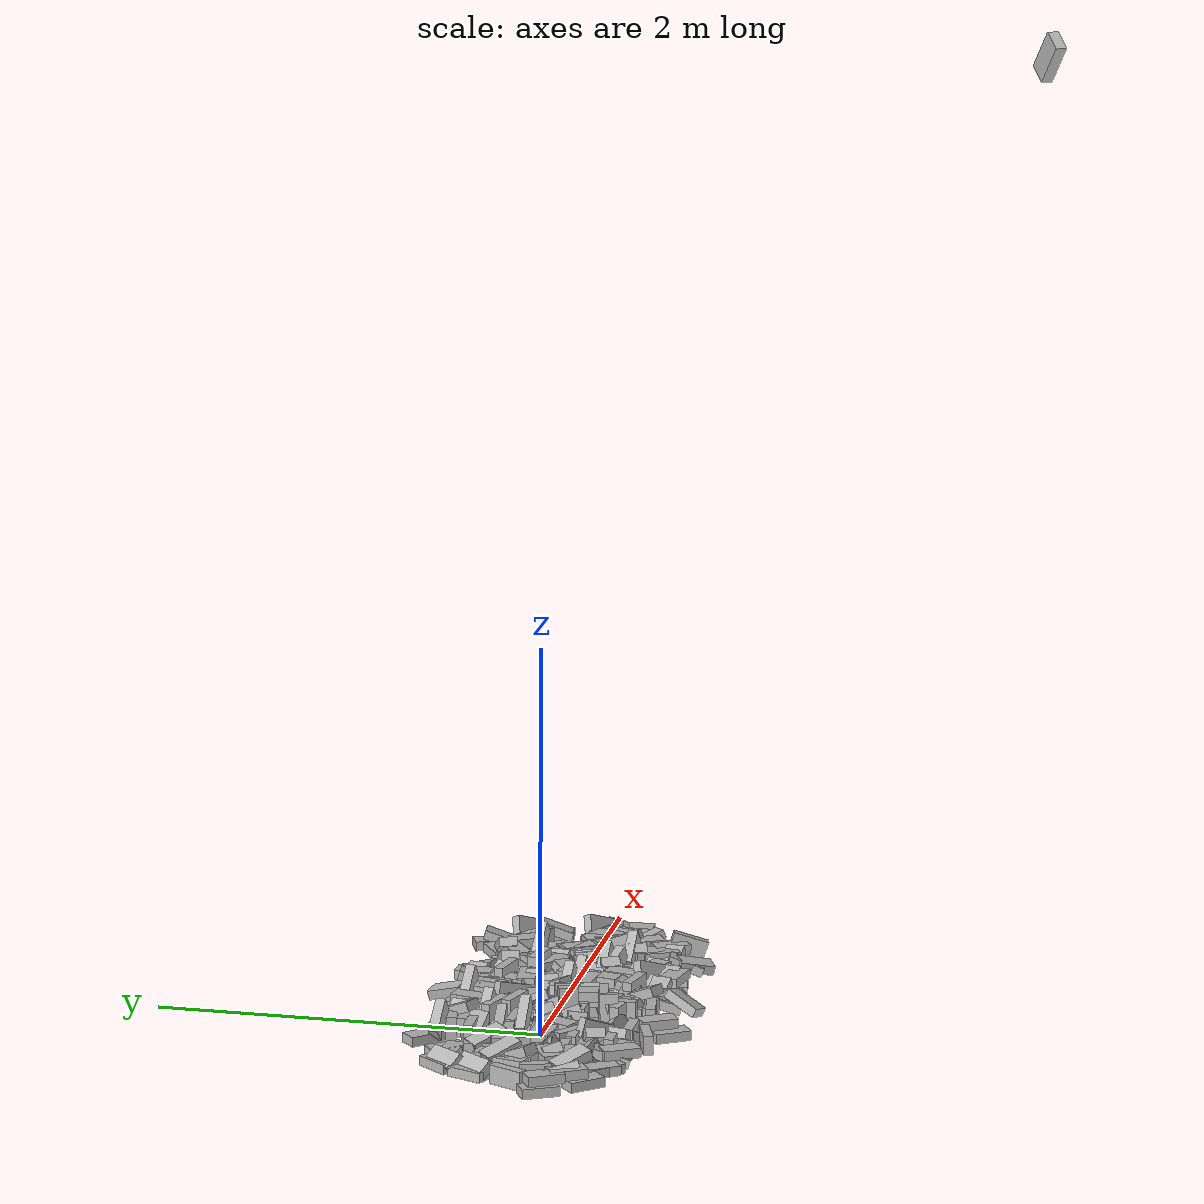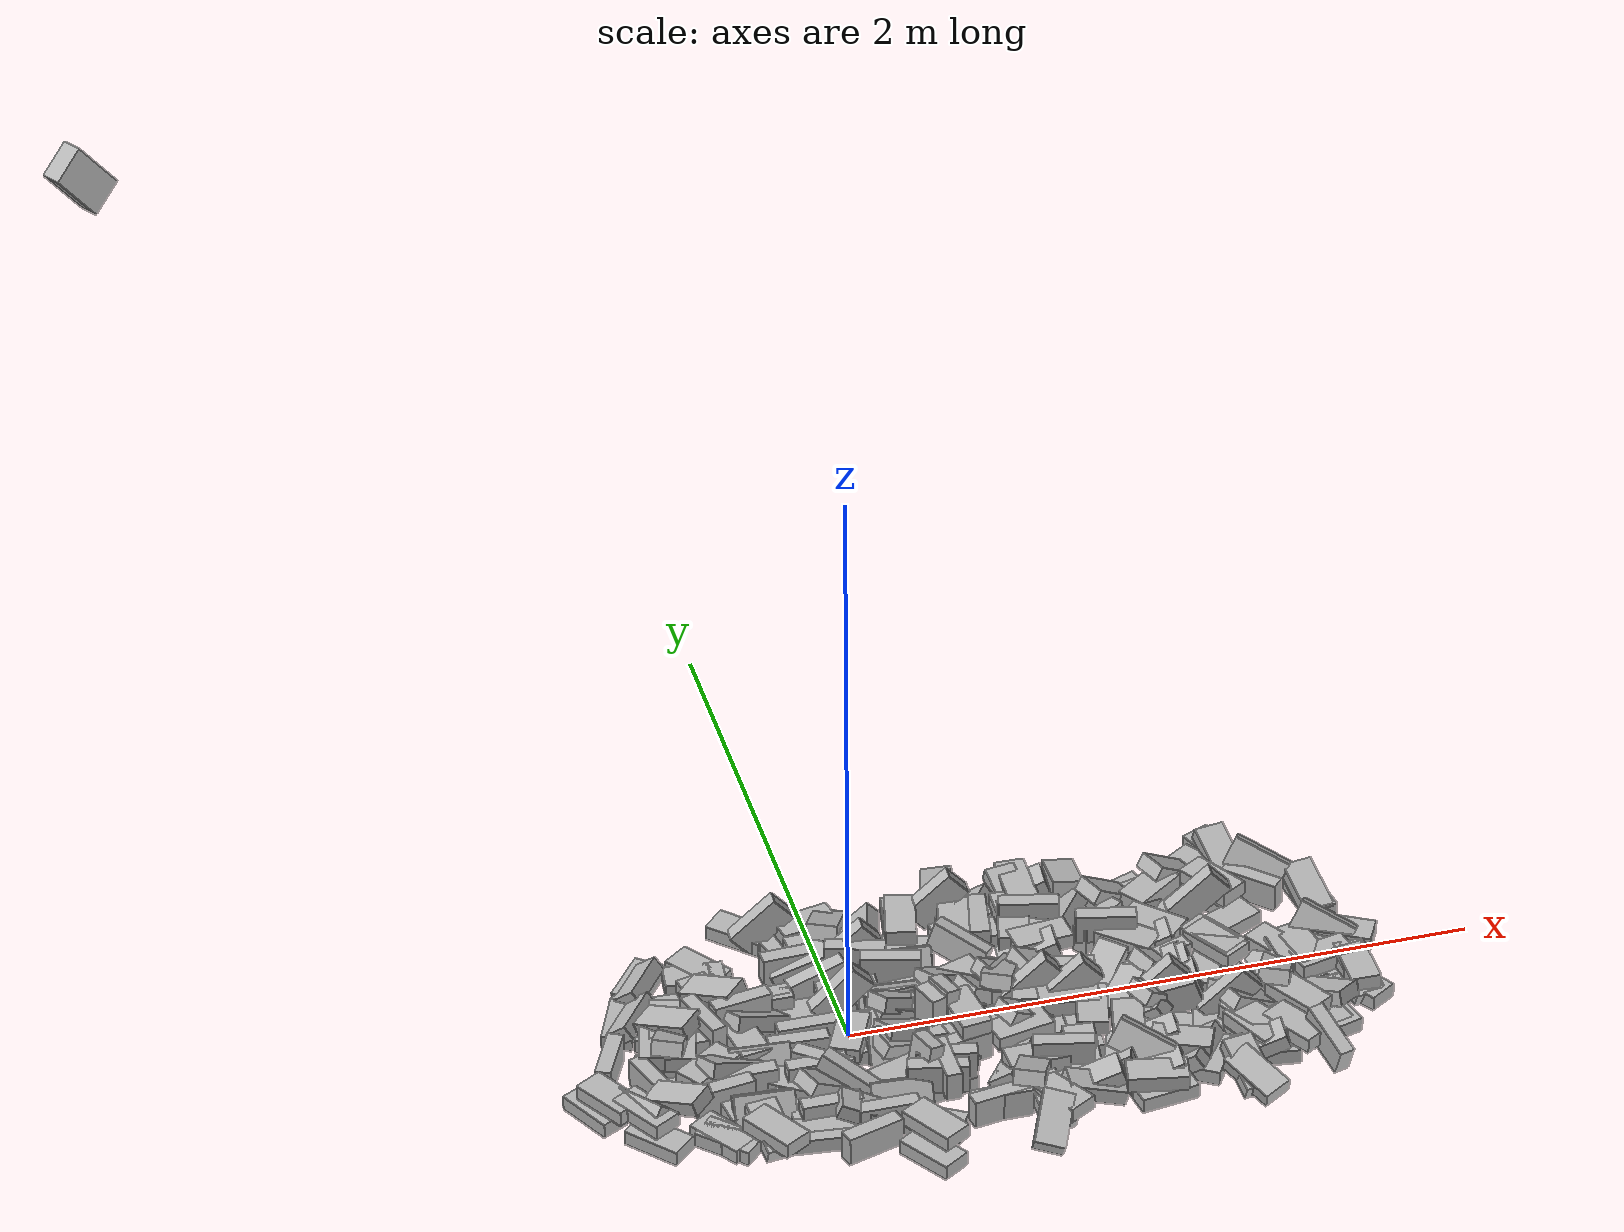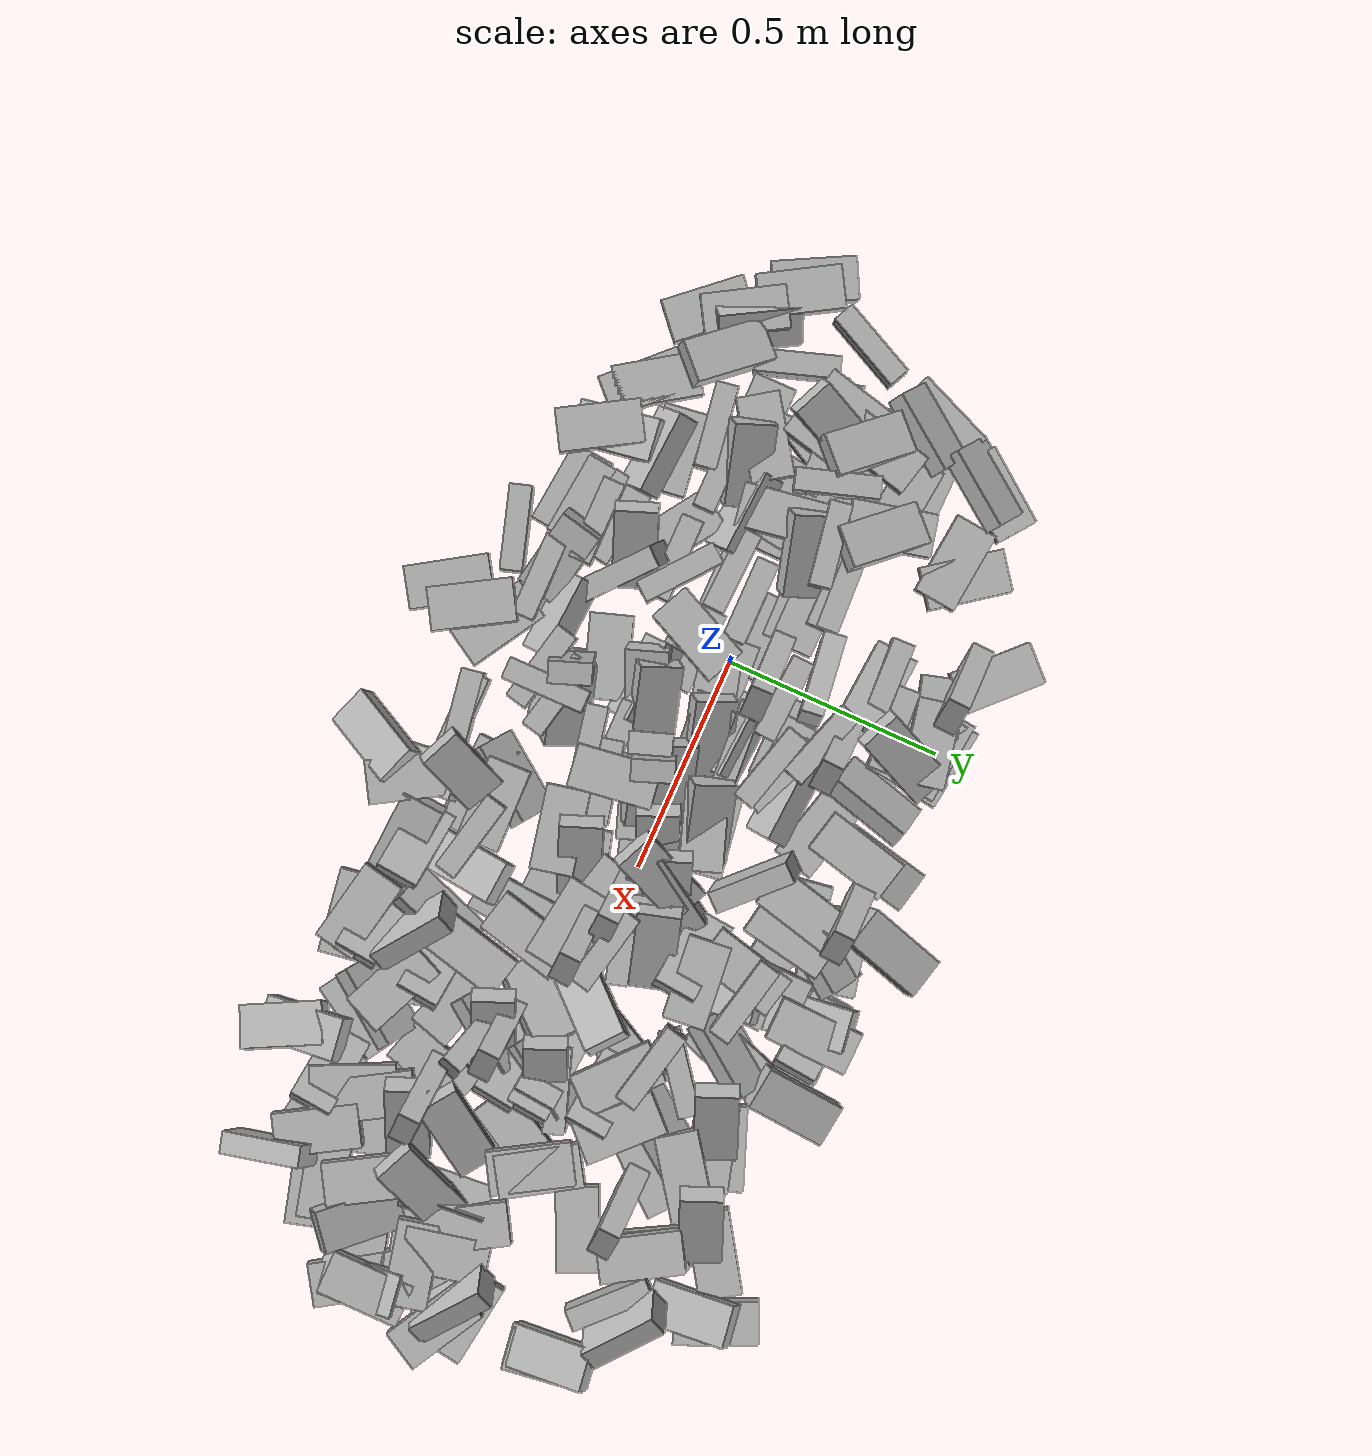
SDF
<?xml version="1.0" ?>
<sdf version="1.5">
  <model name="dbrick_stack">

    <include>
      <name>d1</name>
      <pose frame=''>-0.140407 -0.015073 0.04849 0.000197 -1.3e-05 0.000845</pose>
      <uri>model://dbrick</uri>
    </include>
    <include>
      <name>d2</name>
      <pose frame=''>-0.159002 -0.204749 0.04849 0.000197 -1.3e-05 0.000845</pose>
      <uri>model://dbrick</uri>
    </include>
    <include>
      <name>d3</name>
      <pose frame=''>0.264282 -0.15928 0.04849 0.000197 -1.3e-05 0.000845</pose>
      <uri>model://dbrick</uri>
    </include>
    <include>
      <name>d4</name>
      <pose frame=''>0 -0.459723 0.04849 0.000197 -1.3e-05 0.000845</pose>
      <uri>model://dbrick</uri>
    </include>
    <include>
      <name>d5</name>
      <pose frame=''>-0.501 0 0.04849 0.000197 -1.3e-05 0.000845</pose>
      <uri>model://dbrick</uri>
    </include>
    <include>
      <name>d6</name>
      <pose frame=''>-0.2409 0.141432 0.04849 0.000197 -1.3e-05 0.000845</pose>
      <uri>model://dbrick</uri>
    </include>
    <include>
      <name>d7</name>
      <pose frame=''>-0.37768 -0.19275 0.04849 0.000197 -1.3e-05 0.000845</pose>
      <uri>model://dbrick</uri>
    </include>
    <include>
      <name>d8</name>
      <pose frame=''>-0.39794 0.02585 0.04849 0.000197 -1.3e-05 0.000845</pose>
      <uri>model://dbrick</uri>
    </include>
    <include>
      <name>d9</name>
      <pose frame=''>0.348471 -0.494103 0.04849 0.000197 -1.3e-05 0.000845</pose>
      <uri>model://dbrick</uri>
    </include>
    <include>
      <name>d10</name>
      <pose frame=''>-0.1629 -0.39564 0.04849 0.000197 -1.3e-05 0.000845</pose>
      <uri>model://dbrick</uri>
    </include>
    <include>
      <name>d11</name>
      <pose frame=''>-0.078767 0.037639 0 0 -0 0</pose>
      <uri>model://dbrick</uri>
    </include>
    <include>
      <name>d12</name>
      <pose frame=''>-0.186008 -0.09158 0 0 -0 0</pose>
      <uri>model://dbrick</uri>
    </include>
    <include>
      <name>d13</name>
      <pose frame=''>-0.347579 -0.037796 0.024998 -1.5708 -2e-05 -0.003486</pose>
      <uri>model://dbrick</uri>
    </include>
    <include>
      <name>d14</name>
      <pose frame=''>-0.175951 0.107717 0.024998 -1.5708 -2e-05 -0.003486</pose>
      <uri>model://dbrick</uri>
    </include>
    <include>
      <name>d15</name>
      <pose frame=''>0.111732 0.184495 0.024998 -1.5708 -2e-05 -0.003486</pose>
      <uri>model://dbrick</uri>
    </include>
    <include>
      <name>d16</name>
      <pose frame=''>-0.455829 -0.13263 0.024998 -1.5708 -2e-05 -0.003486</pose>
      <uri>model://dbrick</uri>
    </include>
    <include>
      <name>d17</name>
      <pose frame=''>0.142531 0.079505 0.054224 -0.581093 -4e-06 -0.062141</pose>
      <uri>model://dbrick</uri>
    </include>
    <include>
      <name>d18</name>
      <pose frame=''>0.227001 0.233589 0.054224 -0.581093 -4e-06 -0.062141</pose>
      <uri>model://dbrick</uri>
    </include>
    <include>
      <name>d19</name>
      <pose frame=''>0.114864 -0.155943 0.054224 -0.581093 -4e-06 -0.062141</pose>
      <uri>model://dbrick</uri>
    </include>
    <include>
      <name>d20</name>
      <pose frame=''>-0.314268 -0.109297 0.054224 -0.581093 -4e-06 -0.062141</pose>
      <uri>model://dbrick</uri>
    </include>
    <include>
      <name>d21</name>
      <pose frame=''>-0.357726 -0.334883 0.054224 -0.581093 -4e-06 -0.062141</pose>
      <uri>model://dbrick</uri>
    </include>
    <include>
      <name>d22</name>
      <pose frame=''>0.060434 -0.383261 0.054224 -0.581093 -4e-06 -0.062141</pose>
      <uri>model://dbrick</uri>
    </include>
    <include>
      <name>d23</name>
      <pose frame=''>0.296744 -0.015419 0.080433 1.25558 0.376008 0.279887</pose>
      <uri>model://dbrick</uri>
    </include>
    <include>
      <name>d24</name>
      <pose frame=''>0.15144 -0.117381 0.080433 1.25558 0.376008 0.279887</pose>
      <uri>model://dbrick</uri>
    </include>
    <include>
      <name>d25</name>
      <pose frame=''>0.226254 -0.291248 0.080433 1.25558 0.376008 0.279887</pose>
      <uri>model://dbrick</uri>
    </include>
    <include>
      <name>d26</name>
      <pose frame=''>0.171229 0.023884 0.080433 1.25558 0.376008 0.279887</pose>
      <uri>model://dbrick</uri>
    </include>
    <include>
      <name>d27</name>
      <pose frame=''>0.315794 -0.058024 0.080433 1.25558 0.376008 0.279887</pose>
      <uri>model://dbrick</uri>
    </include>
    <include>
      <name>d28</name>
      <pose frame=''>0.339518 0.095438 0.080433 1.25558 0.376008 0.279887</pose>
      <uri>model://dbrick</uri>
    </include>
    <include>
      <name>d29</name>
      <pose frame=''>-0.286465 0.053815 0.080433 1.25558 0.376008 0.279887</pose>
      <uri>model://dbrick</uri>
    </include>
    <include>
      <name>d30</name>
      <pose frame=''>-0.416178 -0.145607 0.080433 1.25558 0.376008 0.279887</pose>
      <uri>model://dbrick</uri>
    </include>
    <include>
      <name>d31</name>
      <pose frame=''>0.18221 0.204324 0.04849 -2e-06 -0 -0.397847</pose>
      <uri>model://dbrick</uri>
    </include>
    <include>
      <name>d32</name>
      <pose frame=''>0.271674 -0.064169 0.097976 -1.5708 1.38604 -2.78475</pose>
      <uri>model://dbrick</uri>
    </include>
    <include>
      <name>d33</name>
      <pose frame=''>0.151166 -0.314888 0.097976 -1.5708 1.38604 -2.78475</pose>
      <uri>model://dbrick</uri>
    </include>
    <include>
      <name>d34</name>
      <pose frame=''>-0.384418 0.18962 0.1074 -1.47754 -0.315178 -0.823493</pose>
      <uri>model://dbrick</uri>
    </include>
    <include>
      <name>d35</name>
      <pose frame=''>-0.554457 0.078955 0.1074 -1.47754 -0.315178 -0.823493</pose>
      <uri>model://dbrick</uri>
    </include>
    <include>
      <name>d36</name>
      <pose frame=''>-0.614704 -0.284804 0.1074 -1.47754 -0.315178 -0.823493</pose>
      <uri>model://dbrick</uri>
    </include>
    <include>
      <name>d37</name>
      <pose frame=''>-0.149306 -0.297684 0.070548 1.57083 0.543761 0.363115</pose>
      <uri>model://dbrick</uri>
    </include>
    <include>
      <name>d38</name>
      <pose frame=''>0.528574 -0.127156 0.070548 1.57083 0.543761 0.363115</pose>
      <uri>model://dbrick</uri>
    </include>
    <include>
      <name>d39</name>
      <pose frame=''>0.517736 0.081658 0.070548 1.57083 0.543761 0.363115</pose>
      <uri>model://dbrick</uri>
    </include>
    <include>
      <name>d40</name>
      <pose frame=''>0.568006 0 0.075 -1.5708 -1e-06 -1.81364</pose>
      <uri>model://dbrick</uri>
    </include>
    <include>
      <name>d41</name>
      <pose frame=''>0.27761 0.426539 0.074994 -1.57076 1.9e-05 -1.80619</pose>
      <uri>model://dbrick</uri>
    </include>
    <include>
      <name>d42</name>
      <pose frame=''>0.434794 0.370416 0.075004 -1.57068 2.7e-05 -1.80586</pose>
      <uri>model://dbrick</uri>
    </include>
    <include>
      <name>d43</name>
      <pose frame=''>0.610433 0.304788 0.075 -1.57079 1.1e-05 -1.80574</pose>
      <uri>model://dbrick</uri>
    </include>
    <include>
      <name>d44</name>
      <pose frame=''>0.731074 -0.160918 0.074998 -1.57084 1e-05 -1.80522</pose>
      <uri>model://dbrick</uri>
    </include>
    <include>
      <name>d45</name>
      <pose frame=''>0.818524 -0.260604 0.074999 -1.57079 -4e-05 -1.8051</pose>
      <uri>model://dbrick</uri>
    </include>
    <include>
      <name>d46</name>
      <pose frame=''>-0.537357 0 0.074999 -1.57083 0 -1.80383</pose>
      <uri>model://dbrick</uri>
    </include>
    <include>
      <name>d47</name>
      <pose frame=''>-0.610588 0.026403 0.075003 -1.5708 -4.7e-05 -1.80356</pose>
      <uri>model://dbrick</uri>
    </include>
    <include>
      <name>d48</name>
      <pose frame=''>-0.488657 -0.424528 0.025 -1.5708 0 -0.784797</pose>
      <uri>model://dbrick</uri>
    </include>
    <include>
      <name>d49</name>
      <pose frame=''>-0.402998 0.364882 0.025 -1.57078 -8e-06 -0.102342</pose>
      <uri>model://dbrick</uri>
    </include>
    <include>
      <name>d50</name>
      <pose frame=''>-0.482431 0.202994 0.025 -1.57078 -8e-06 -0.102342</pose>
      <uri>model://dbrick</uri>
    </include>
    <include>
      <name>d51</name>
      <pose frame=''>-0.192592 -0.433296 0.025 -1.57078 -8e-06 -0.102342</pose>
      <uri>model://dbrick</uri>
    </include>
    <include>
      <name>d52</name>
      <pose frame=''>0 0.493994 0.025 -1.57078 -8e-06 -0.102342</pose>
      <uri>model://dbrick</uri>
    </include>
    <include>
      <name>d53</name>
      <pose frame=''>0 0.424208 0.025 -1.57078 -8e-06 -0.102342</pose>
      <uri>model://dbrick</uri>
    </include>
    <include>
      <name>d54</name>
      <pose frame=''>0.479081 0.35788 0.025 -1.57078 -8e-06 -0.102342</pose>
      <uri>model://dbrick</uri>
    </include>
    <include>
      <name>d55</name>
      <pose frame=''>0.494289 -0.388641 0.025 -1.57078 -8e-06 -0.102342</pose>
      <uri>model://dbrick</uri>
    </include>
    <include>
      <name>d56</name>
      <pose frame=''>-0.58793 0.354508 0.049822 -2.24338 0.000538 0.942008</pose>
      <uri>model://dbrick</uri>
    </include>
    <include>
      <name>d57</name>
      <pose frame=''>-0.651142 0.192817 0.049822 -2.24338 0.000538 0.942008</pose>
      <uri>model://dbrick</uri>
    </include>
    <include>
      <name>d58</name>
      <pose frame=''>1 0 0.049822 -2.24338 0.000538 0.942008</pose>
      <uri>model://dbrick</uri>
    </include>
    <include>
      <name>d59</name>
      <pose frame=''>0.790712 0.350859 0.049822 -2.24338 0.000538 0.942008</pose>
      <uri>model://dbrick</uri>
    </include>
    <include>
      <name>d60</name>
      <pose frame=''>1 0 0.049822 -2.24338 0.000538 0.942008</pose>
      <uri>model://dbrick</uri>
    </include>
    <include>
      <name>d61</name>
      <pose frame=''>1.00188 0.279942 0.049822 -2.24338 0.000538 0.942008</pose>
      <uri>model://dbrick</uri>
    </include>
    <include>
      <name>d62</name>
      <pose frame=''>0.43375 -0.336843 0.049822 -2.24338 0.000538 0.942008</pose>
      <uri>model://dbrick</uri>
    </include>
    <include>
      <name>d63</name>
      <pose frame=''>0.953716 -0.147439 0.049822 -2.24338 0.000538 0.942008</pose>
      <uri>model://dbrick</uri>
    </include>
    <include>
      <name>d64</name>
      <pose frame=''>1 -0.405395 0.049822 -2.24338 0.000538 0.942008</pose>
      <uri>model://dbrick</uri>
    </include>
    <include>
      <name>d65</name>
      <pose frame=''>0.50089 0.440265 0.049822 -2.24338 0.000538 0.942008</pose>
      <uri>model://dbrick</uri>
    </include>
    <include>
      <name>d66</name>
      <pose frame=''>0.667152 0.330834 0.098492 -1.2e-05 9e-06 -0.219058</pose>
      <uri>model://dbrick</uri>
    </include>
    <include>
      <name>d67</name>
      <pose frame=''>0.881922 0.20348 0.098492 -1.2e-05 9e-06 -0.219058</pose>
      <uri>model://dbrick</uri>
    </include>
    <include>
      <name>d68</name>
      <pose frame=''>0.687261 0.005526 0.098492 -1.2e-05 9e-06 -0.219058</pose>
      <uri>model://dbrick</uri>
    </include>
    <include>
      <name>d69</name>
      <pose frame=''>0.179713 -0.373484 0.098492 -1.2e-05 9e-06 -0.219058</pose>
      <uri>model://dbrick</uri>
    </include>
    <include>
      <name>d70</name>
      <pose frame=''>0.221679 -0.316146 0.098492 -1.2e-05 9e-06 -0.219058</pose>
      <uri>model://dbrick</uri>
    </include>
    <include>
      <name>d71</name>
      <pose frame=''>0.581176 -0.362588 0.098492 -1.2e-05 9e-06 -0.219058</pose>
      <uri>model://dbrick</uri>
    </include>
    <include>
      <name>d72</name>
      <pose frame=''>-0.076411 0.319029 0.056619 -1.5708 -0.356957 -0.09265</pose>
      <uri>model://dbrick</uri>
    </include>
    <include>
      <name>d73</name>
      <pose frame=''>0.970231 0.004914 0.056619 -1.5708 -0.356957 -0.09265</pose>
      <uri>model://dbrick</uri>
    </include>
    <include>
      <name>d74</name>
      <pose frame=''>1 0 0.056619 -1.5708 -0.356957 -0.09265</pose>
      <uri>model://dbrick</uri>
    </include>
    <include>
      <name>d75</name>
      <pose frame=''>0.839276 -0.483585 0.056619 -1.5708 -0.356957 -0.09265</pose>
      <uri>model://dbrick</uri>
    </include>
    <include>
      <name>d76</name>
      <pose frame=''>0.867278 -0.322243 0.056619 -1.5708 -0.356957 -0.09265</pose>
      <uri>model://dbrick</uri>
    </include>
    <include>
      <name>d77</name>
      <pose frame=''>0.645605 -0.470402 0.056619 -1.5708 -0.356957 -0.09265</pose>
      <uri>model://dbrick</uri>
    </include>
    <include>
      <name>d78</name>
      <pose frame=''>0.627216 0.18901 0.056619 -1.5708 -0.356957 -0.09265</pose>
      <uri>model://dbrick</uri>
    </include>
    <include>
      <name>d79</name>
      <pose frame=''>0.981379 0.132772 0.056619 -1.5708 -0.356957 -0.09265</pose>
      <uri>model://dbrick</uri>
    </include>
    <include>
      <name>d80</name>
      <pose frame=''>0.679754 0.502002 0.056619 -1.5708 -0.356957 -0.09265</pose>
      <uri>model://dbrick</uri>
    </include>
    <include>
      <name>d81</name>
      <pose frame=''>1 0 0.056619 -1.5708 -0.356957 -0.09265</pose>
      <uri>model://dbrick</uri>
    </include>
    <include>
      <name>d82</name>
      <pose frame=''>1.17925 -0.438559 0.056619 -1.5708 -0.356957 -0.09265</pose>
      <uri>model://dbrick</uri>
    </include>
    <include>
      <name>d83</name>
      <pose frame=''>0.952286 -0.146078 0.072452 1.57089 0.572042 0.391576</pose>
      <uri>model://dbrick</uri>
    </include>
    <include>
      <name>d84</name>
      <pose frame=''>1 0 0.072452 1.57089 0.572042 0.391576</pose>
      <uri>model://dbrick</uri>
    </include>
    <include>
      <name>d85</name>
      <pose frame=''>0.435539 0.017507 0.072452 1.57089 0.572042 0.391576</pose>
      <uri>model://dbrick</uri>
    </include>
    <include>
      <name>d86</name>
      <pose frame=''>0.942236 0.385775 0.072452 1.57089 0.572042 0.391576</pose>
      <uri>model://dbrick</uri>
    </include>
    <include>
      <name>d87</name>
      <pose frame=''>1.16278 0.447637 0.072452 1.57089 0.572042 0.391576</pose>
      <uri>model://dbrick</uri>
    </include>
    <include>
      <name>d88</name>
      <pose frame=''>1.20757 -0.238502 0.072452 1.57089 0.572042 0.391576</pose>
      <uri>model://dbrick</uri>
    </include>
    <include>
      <name>d89</name>
      <pose frame=''>0.581231 -0.013189 0.099675 3.13965 0.733785 3.09129</pose>
      <uri>model://dbrick</uri>
    </include>
    <include>
      <name>d90</name>
      <pose frame=''>0.404892 0.46886 0.099675 3.13965 0.733785 3.09129</pose>
      <uri>model://dbrick</uri>
    </include>
    <include>
      <name>d91</name>
      <pose frame=''>0.077038 0.295823 0.099675 3.13965 0.733785 3.09129</pose>
      <uri>model://dbrick</uri>
    </include>
    <include>
      <name>d92</name>
      <pose frame=''>-0.154358 0.490646 0.099675 3.13965 0.733785 3.09129</pose>
      <uri>model://dbrick</uri>
    </include>
    <include>
      <name>d93</name>
      <pose frame=''>0.953534 -0.129576 0.099675 3.13965 0.733785 3.09129</pose>
      <uri>model://dbrick</uri>
    </include>
    <include>
      <name>d94</name>
      <pose frame=''>1.20068 0.267465 0.099675 3.13965 0.733785 3.09129</pose>
      <uri>model://dbrick</uri>
    </include>
    <include>
      <name>d95</name>
      <pose frame=''>1.15148 -0.230027 0.099675 3.13965 0.733785 3.09129</pose>
      <uri>model://dbrick</uri>
    </include>
    <include>
      <name>d96</name>
      <pose frame=''>0.690469 -0.05407 0.099675 3.13965 0.733785 3.09129</pose>
      <uri>model://dbrick</uri>
    </include>
    <include>
      <name>d97</name>
      <pose frame=''>1.19558 0.052946 0.074998 1.57085 0.000157 -1.03299</pose>
      <uri>model://dbrick</uri>
    </include>
    <include>
      <name>d98</name>
      <pose frame=''>1.19427 -0.330485 0.074998 1.57085 0.000157 -1.03299</pose>
      <uri>model://dbrick</uri>
    </include>
    <include>
      <name>d99</name>
      <pose frame=''>0.52026 -0.540503 0.074998 1.57085 0.000157 -1.03299</pose>
      <uri>model://dbrick</uri>
    </include>
    <include>
      <name>d100</name>
      <pose frame=''>0.116927 -0.571585 0.074998 1.57085 0.000157 -1.03299</pose>
      <uri>model://dbrick</uri>
    </include>
    <include>
      <name>d101</name>
      <pose frame=''>-0.356684 -0.475145 0.074998 1.57085 0.000157 -1.03299</pose>
      <uri>model://dbrick</uri>
    </include>
    <include>
      <name>d102</name>
      <pose frame=''>-0.716187 -0.285831 0.074998 1.57085 0.000157 -1.03299</pose>
      <uri>model://dbrick</uri>
    </include>
    <include>
      <name>d103</name>
      <pose frame=''>-0.806178 -0.192421 0.074998 1.57085 0.000157 -1.03299</pose>
      <uri>model://dbrick</uri>
    </include>
    <include>
      <name>d104</name>
      <pose frame=''>1.2737 0.352261 0.074998 1.57085 0.000157 -1.03299</pose>
      <uri>model://dbrick</uri>
    </include>
    <include>
      <name>d105</name>
      <pose frame=''>1.3727 -0.023614 0.074998 1.57085 0.000157 -1.03299</pose>
      <uri>model://dbrick</uri>
    </include>
    <include>
      <name>d106</name>
      <pose frame=''>1.36508 -0.266131 0.074998 1.57085 0.000157 -1.03299</pose>
      <uri>model://dbrick</uri>
    </include>
    <include>
      <name>d107</name>
      <pose frame=''>1.31092 -0.409835 0.074998 1.57085 0.000157 -1.03299</pose>
      <uri>model://dbrick</uri>
    </include>
    <include>
      <name>d108</name>
      <pose frame=''>0.824242 -0.394745 0.097201 -0.459369 0.338975 -0.627792</pose>
      <uri>model://dbrick</uri>
    </include>
    <include>
      <name>d109</name>
      <pose frame=''>1.43273 0.38379 0.097201 -0.459369 0.338975 -0.627792</pose>
      <uri>model://dbrick</uri>
    </include>
    <include>
      <name>d110</name>
      <pose frame=''>1.5351 0.016135 0.097201 -0.459369 0.338975 -0.627792</pose>
      <uri>model://dbrick</uri>
    </include>
    <include>
      <name>d111</name>
      <pose frame=''>0.553648 -0.106489 0.024998 1.57084 -1e-06 0.27518</pose>
      <uri>model://dbrick</uri>
    </include>
    <include>
      <name>d112</name>
      <pose frame=''>0.884059 -0.355356 0.024998 1.57084 -1e-06 0.27518</pose>
      <uri>model://dbrick</uri>
    </include>
    <include>
      <name>d113</name>
      <pose frame=''>1.42551 -0.126223 0.024998 1.57084 -1e-06 0.27518</pose>
      <uri>model://dbrick</uri>
    </include>
    <include>
      <name>d114</name>
      <pose frame=''>1.42751 -0.374193 0.024998 1.57084 -1e-06 0.27518</pose>
      <uri>model://dbrick</uri>
    </include>
    <include>
      <name>d115</name>
      <pose frame=''>0.105795 0.003784 0.024998 1.57084 -1e-06 0.27518</pose>
      <uri>model://dbrick</uri>
    </include>
    <include>
      <name>d116</name>
      <pose frame=''>0.506639 0 0.024998 1.57084 -1e-06 0.27518</pose>
      <uri>model://dbrick</uri>
    </include>
    <include>
      <name>d117</name>
      <pose frame=''>1 0.401054 0.024998 1.57084 -1e-06 0.27518</pose>
      <uri>model://dbrick</uri>
    </include>
    <include>
      <name>d118</name>
      <pose frame=''>0.493977 0.442686 0.024998 1.57084 -1e-06 0.27518</pose>
      <uri>model://dbrick</uri>
    </include>
    <include>
      <name>d119</name>
      <pose frame=''>-0.070541 0.470524 0.024998 1.57084 -1e-06 0.27518</pose>
      <uri>model://dbrick</uri>
    </include>
    <include>
      <name>d120</name>
      <pose frame=''>-0.572985 0 0.024998 1.57084 -1e-06 0.27518</pose>
      <uri>model://dbrick</uri>
    </include>
    <include>
      <name>d121</name>
      <pose frame=''>1.53413 -0.206467 0.024998 1.57084 -1e-06 0.27518</pose>
      <uri>model://dbrick</uri>
    </include>
    <include>
      <name>d122</name>
      <pose frame=''>1.49406 -0.097895 0.075005 1.5707 -0.000137 0.228206</pose>
      <uri>model://dbrick</uri>
    </include>
    <include>
      <name>d123</name>
      <pose frame=''>1.12107 -0.528648 0.055294 1.57081 0.340536 -1.42516</pose>
      <uri>model://dbrick</uri>
    </include>
    <include>
      <name>d124</name>
      <pose frame=''>0.649711 0.484067 0.055294 1.57081 0.340536 -1.42516</pose>
      <uri>model://dbrick</uri>
    </include>
    <include>
      <name>d125</name>
      <pose frame=''>0.672618 0.273957 0.055294 1.57081 0.340536 -1.42516</pose>
      <uri>model://dbrick</uri>
    </include>
    <include>
      <name>d126</name>
      <pose frame=''>1.58349 -0.183792 0.055294 1.57081 0.340536 -1.42516</pose>
      <uri>model://dbrick</uri>
    </include>
    <include>
      <name>d127</name>
      <pose frame=''>1.56103 0.261864 0.055294 1.57081 0.340536 -1.42516</pose>
      <uri>model://dbrick</uri>
    </include>
    <include>
      <name>d128</name>
      <pose frame=''>1.34614 0.508902 0.055294 1.57081 0.340536 -1.42516</pose>
      <uri>model://dbrick</uri>
    </include>
    <include>
      <name>d129</name>
      <pose frame=''>1.32847 -0.151015 0.100581 -1.59577 -0.404556 -1.97374</pose>
      <uri>model://dbrick</uri>
    </include>
    <include>
      <name>d130</name>
      <pose frame=''>0.494256 0.050481 0.100581 -1.59577 -0.404556 -1.97374</pose>
      <uri>model://dbrick</uri>
    </include>
    <include>
      <name>d131</name>
      <pose frame=''>0.037387 0.431075 0.100581 -1.59577 -0.404556 -1.97374</pose>
      <uri>model://dbrick</uri>
    </include>
    <include>
      <name>d132</name>
      <pose frame=''>-0.56474 0 0.100581 -1.59577 -0.404556 -1.97374</pose>
      <uri>model://dbrick</uri>
    </include>
    <include>
      <name>d133</name>
      <pose frame=''>0.463431 -0.428796 0.100581 -1.59577 -0.404556 -1.97374</pose>
      <uri>model://dbrick</uri>
    </include>
    <include>
      <name>d134</name>
        <pose frame=''>-0.003689 0.086742 0.100943 3.14132 0.769792 -3.13146</pose>
      <uri>model://dbrick</uri>
    </include>
    <include>
      <name>d135</name>
        <pose frame=''>0.659237 0.033021 0.0485 -3.14159 -0 -2.85651</pose>
      <uri>model://dbrick</uri>
    </include>
    <include>
      <name>d136</name>
        <pose frame=''>0.439335 0.585756 0.056676 -1.42102 -0.276488 -1.85854</pose>
      <uri>model://dbrick</uri>
    </include>
    <include>
      <name>d137</name>
        <pose frame=''>0.085953 0.255782 0.098511 -3.14121 0.000496 2.82558</pose>
      <uri>model://dbrick</uri>
    </include>
    <include>
      <name>d138</name>
        <pose frame=''>-0.208238 0.552925 0.025 1.5708 -0 2.36808</pose>
      <uri>model://dbrick</uri>
    </include>
    <include>
      <name>d139</name>
        <pose frame=''>0.981514 -0.174781 0.078204 -3.14149 0.350943 2.84975</pose>
      <uri>model://dbrick</uri>
    </include>
    <include>
      <name>d140</name>
        <pose frame=''>1.28257 0.203122 0.024881 -1.5708 3e-06 -2.70724</pose>
      <uri>model://dbrick</uri>
    </include>
    <include>
      <name>d141</name>
        <pose frame=''>1.18748 -0.130406 0.060424 -1.57078 -0.405212 -2.18275</pose>
      <uri>model://dbrick</uri>
    </include>
    <include>
      <name>d142</name>
        <pose frame=''>0.674475 -0.091739 0.075133 -1.5708 0.001375 3.00619</pose>
      <uri>model://dbrick</uri>
    </include>
    <include>
      <name>d143</name>
        <pose frame=''>-0.184451 -0.079483 0.048481 1.1e-05 -0 -0.043888</pose>
      <uri>model://dbrick</uri>
    </include>
    <include>
      <name>d144</name>
        <pose frame=''>-0.133609 -0.183068 0.0485 1.1e-05 -0 -0.672185</pose>
      <uri>model://dbrick</uri>
    </include>
    <include>
      <name>d145</name>
        <pose frame=''>-0.087778 -0.29454 0.081286 -0.049423 0.378819 -0.722818</pose>
      <uri>model://dbrick</uri>
    </include>
    <include>
      <name>d146</name>
        <pose frame=''>0.833594 -0.521409 0.074998 1.57083 -8e-06 -0.192502</pose>
      <uri>model://dbrick</uri>
    </include>
    <include>
      <name>d147</name>
        <pose frame=''>1.39824 0.332099 0.0485 -0 -0 -0.769168</pose>
      <uri>model://dbrick</uri>
    </include>
    <include>
      <name>d148</name>
        <pose frame=''>1.55969 0.049213 0.025 -1.5708 3e-06 -0.138379</pose>
      <uri>model://dbrick</uri>
    </include>
    <include>
      <name>d149</name>
        <pose frame=''>-0.046764 0.197802 0.072143 -0.000118 -0.27085 0.119844</pose>
      <uri>model://dbrick</uri>
    </include>
    <include>
      <name>d150</name>
        <pose frame=''>0.004749 -0.102029 0.024998 -1.57084 -3e-06 -0.044556</pose>
      <uri>model://dbrick</uri>
    </include>
    <include>
      <name>d151</name>
        <pose frame=''>-0.372297 -0.036682 0.025 -1.5708 3e-06 -0.125776</pose>
      <uri>model://dbrick</uri>
    </include>
    <include>
      <name>d152</name>
        <pose frame=''>-0.181742 0.085627 0.024822 -1.57076 -0 0.018671</pose>
      <uri>model://dbrick</uri>
    </include>
    <include>
      <name>d153</name>
        <pose frame=''>0.154282 0.204825 0.025 -1.57079 -0 -0.08803</pose>
      <uri>model://dbrick</uri>
    </include>
    <include>
      <name>d154</name>
        <pose frame=''>-0.512018 -0.161329 0.024994 -1.57081 3.2e-05 0.005484</pose>
      <uri>model://dbrick</uri>
    </include>
    <include>
      <name>d155</name>
        <pose frame=''>0.158145 0.086479 0.048471 2e-06 -1e-06 0.064436</pose>
      <uri>model://dbrick</uri>
    </include>
    <include>
      <name>d156</name>
        <pose frame=''>0.261087 0.331677 0.024857 -1.5708 0.000137 -0.261447</pose>
      <uri>model://dbrick</uri>
    </include>
    <include>
      <name>d157</name>
        <pose frame=''>0.09986 -0.252551 0.024997 1.5708 2.9e-05 0.324917</pose>
      <uri>model://dbrick</uri>
    </include>
    <include>
      <name>d158</name>
        <pose frame=''>0.354362 -0.145673 0.048498 -3.14158 -2e-05 0.220302</pose>
      <uri>model://dbrick</uri>
    </include>
    <include>
      <name>d159</name>
        <pose frame=''>0.125402 -0.142849 0.065373 1.74398 0.373455 0.402562</pose>
      <uri>model://dbrick</uri>
    </include>
    <include>
      <name>d160</name>
        <pose frame=''>0.210105 -0.329515 0.025 1.5708 0 0.203738</pose>
      <uri>model://dbrick</uri>
    </include>
    <include>
      <name>d161</name>
        <pose frame=''>0.178595 0.014141 0.059911 1.57079 0.398828 0.064411</pose>
      <uri>model://dbrick</uri>
    </include>
    <include>
      <name>d162</name>
        <pose frame=''>0.353139 -0.05945 0.025001 1.57084 1.6e-05 0.338845</pose>
      <uri>model://dbrick</uri>
    </include>
    <include>
      <name>d163</name>
        <pose frame=''>0.361903 0.113562 0.024998 1.57083 -0 0.151408</pose>
      <uri>model://dbrick</uri>
    </include>
    <include>
      <name>d164</name>
        <pose frame=''>-0.321636 0.094184 0.098508 0.000201 0.000142 0.166547</pose>
      <uri>model://dbrick</uri>
    </include>
    <include>
      <name>d165</name>
        <pose frame=''>-0.481375 -0.133363 0.074993 1.57079 2.8e-05 0.603379</pose>
      <uri>model://dbrick</uri>
    </include>
    <include>
      <name>d166</name>
        <pose frame=''>0.235621 -0.087015 0.095 -1.36001 1.57079 -2.59197</pose>
      <uri>model://dbrick</uri>
    </include>
    <include>
      <name>d167</name>
        <pose frame=''>0.333674 -0.129743 0.122005 -1.57072 -0.000911 -1.43258</pose>
      <uri>model://dbrick</uri>
    </include>
    <include>
      <name>d168</name>
        <pose frame=''>-0.218636 -0.225336 0.025 1.5708 -0 -0.589781</pose>
      <uri>model://dbrick</uri>
    </include>
    <include>
      <name>d169</name>
        <pose frame=''>1.40429 -0.35492 0.025001 1.57079 1.4e-05 0.25695</pose>
      <uri>model://dbrick</uri>
    </include>
    <include>
      <name>d170</name>
        <pose frame=''>0.043506 0.003511 0.024865 1.57075 6e-06 0.064113</pose>
      <uri>model://dbrick</uri>
    </include>
    <include>
      <name>d171</name>
        <pose frame=''>0.448025 0.021564 0.06689 1.5708 0.491697 0.338877</pose>
      <uri>model://dbrick</uri>
    </include>
    <include>
      <name>d172</name>
        <pose frame=''>0.9868 0.423676 0.024981 1.57082 2.3e-05 0.365256</pose>
      <uri>model://dbrick</uri>
    </include>
    <include>
      <name>d173</name>
        <pose frame=''>0.92903 -0.248348 0.02499 1.5708 -0 -0.291564</pose>
      <uri>model://dbrick</uri>
    </include>
    <include>
      <name>d174</name>
        <pose frame=''>1.01615 0.036061 0.0485 -2e-06 -1e-06 0.337811</pose>
      <uri>model://dbrick</uri>
    </include>
    <include>
      <name>d175</name>
        <pose frame=''>0.357541 0.095178 0.074998 1.57083 -6e-06 0.336428</pose>
      <uri>model://dbrick</uri>
    </include>
    <include>
      <name>d176</name>
        <pose frame=''>1.07295 0.367752 0.074996 1.57005 7.6e-05 0.621631</pose>
      <uri>model://dbrick</uri>
    </include>
    <include>
      <name>d177</name>
        <pose frame=''>1.21098 0.500499 0.024785 1.57083 -6.8e-05 0.583193</pose>
      <uri>model://dbrick</uri>
    </include>
    <include>
      <name>d178</name>
        <pose frame=''>1.22383 -0.303206 0.025 1.5708 0 0.281377</pose>
      <uri>model://dbrick</uri>
    </include>
    <include>
      <name>d179</name>
        <pose frame=''>0.485132 0.484291 0.024905 1.57078 -1.5e-05 0.217331</pose>
      <uri>model://dbrick</uri>
    </include>
    <include>
      <name>d180</name>
        <pose frame=''>-0.015842 0.475256 0.074997 1.57079 -2.7e-05 0.20017</pose>
      <uri>model://dbrick</uri>
    </include>
    <include>
      <name>d181</name>
        <pose frame=''>-0.573001 -0.021323 0.025 1.5708 -0 -0.489956</pose>
      <uri>model://dbrick</uri>
    </include>
    <include>
      <name>d182</name>
        <pose frame=''>1.58479 -0.205231 0.025 1.5708 0 -0.994231</pose>
      <uri>model://dbrick</uri>
    </include>
    <include>
      <name>d183</name>
        <pose frame=''>0.490499 -0.192162 0.075001 1.57084 -3e-06 0.20945</pose>
      <uri>model://dbrick</uri>
    </include>
    <include>
      <name>d184</name>
        <pose frame=''>1.59558 0.00116 0.075004 1.57097 -1.7e-05 -0.507954</pose>
      <uri>model://dbrick</uri>
    </include>
    <include>
      <name>d185</name>
        <pose frame=''>0.639553 0.103845 0.068217 1.57077 0.510314 0.285097</pose>
      <uri>model://dbrick</uri>
    </include>
    <include>
      <name>d186</name>
        <pose frame=''>0.546895 -0.166546 0.025 1.57079 -0 -0.041973</pose>
      <uri>model://dbrick</uri>
    </include>
    <include>
      <name>d187</name>
        <pose frame=''>0.900248 -0.398527 0.024998 1.57076 -0 0.565519</pose>
      <uri>model://dbrick</uri>
    </include>
    <include>
      <name>d188</name>
        <pose frame=''>1.46314 -0.073633 0.024997 1.57074 -0 0.176982</pose>
      <uri>model://dbrick</uri>
    </include>
    <include>
      <name>d189</name>
        <pose frame=''>-0.340802 -0.031051 0.074988 -1.57075 7.7e-05 -1.41024</pose>
      <uri>model://dbrick</uri>
    </include>
    <include>
      <name>d190</name>
        <pose frame=''>-0.411709 0.202506 0.074992 -1.57081 -2e-06 -1.34083</pose>
      <uri>model://dbrick</uri>
    </include>
    <include>
      <name>d191</name>
        <pose frame=''>1.1932 0.071971 0.074989 1.56985 -0.000525 -1.00794</pose>
      <uri>model://dbrick</uri>
    </include>
    <include>
      <name>d192</name>
        <pose frame=''>1.19095 -0.377221 0.074988 1.57075 4.1e-05 -1.13744</pose>
      <uri>model://dbrick</uri>
    </include>
    <include>
      <name>d193</name>
        <pose frame=''>1.26846 0.358415 0.025 1.5708 -0 -1.0674</pose>
      <uri>model://dbrick</uri>
    </include>
    <include>
      <name>d194</name>
        <pose frame=''>1.44658 -0.03993 0.075002 1.5708 1.9e-05 -1.35764</pose>
      <uri>model://dbrick</uri>
    </include>
    <include>
      <name>d195</name>
        <pose frame=''>1.45335 -0.249238 0.061123 1.41294 -0.326926 -0.853554</pose>
      <uri>model://dbrick</uri>
    </include>
    <include>
      <name>d196</name>
        <pose frame=''>0.492421 -0.53076 0.051819 1.57085 0.298301 -1.44996</pose>
      <uri>model://dbrick</uri>
    </include>
    <include>
      <name>d197</name>
        <pose frame=''>1.39115 -0.490516 0.07543 0.001472 0.31299 -1.29409</pose>
      <uri>model://dbrick</uri>
    </include>
    <include>
      <name>d198</name>
        <pose frame=''>1.13416 -0.572632 0.0504 1.71697 0.204182 -1.07655</pose>
      <uri>model://dbrick</uri>
    </include>
    <include>
      <name>d199</name>
        <pose frame=''>0.675943 0.502302 0.074997 1.57082 3.1e-05 -1.59345</pose>
      <uri>model://dbrick</uri>
    </include>
    <include>
      <name>d200</name>
        <pose frame=''>0.667545 0.296599 0.025 1.5708 -0 -1.60203</pose>
      <uri>model://dbrick</uri>
    </include>
    <include>
      <name>d201</name>
        <pose frame=''>1.58437 -0.170134 0.075007 1.57078 6.7e-05 -1.57414</pose>
      <uri>model://dbrick</uri>
    </include>
    <include>
      <name>d202</name>
        <pose frame=''>1.57047 0.261932 0.025 1.5708 -0 -1.43415</pose>
      <uri>model://dbrick</uri>
    </include>
    <include>
      <name>d203</name>
        <pose frame=''>1.34664 0.565677 0.025019 1.5704 -0 -1.15944</pose>
      <uri>model://dbrick</uri>
    </include>
    <include>
      <name>d204</name>
        <pose frame=''>0.091391 -0.642022 0.025 1.5708 0 -0.998015</pose>
      <uri>model://dbrick</uri>
    </include>
    <include>
      <name>d205</name>
        <pose frame=''>-0.362939 -0.435282 0.051233 1.57081 0.291336 -1.43508</pose>
      <uri>model://dbrick</uri>
    </include>
    <include>
      <name>d206</name>
        <pose frame=''>-0.704273 -0.248631 0.065206 0.863748 -0.162407 -1.0319</pose>
      <uri>model://dbrick</uri>
    </include>
    <include>
      <name>d207</name>
        <pose frame=''>-0.847308 -0.174693 0.024927 1.57079 5e-06 -1.08628</pose>
      <uri>model://dbrick</uri>
    </include>
    <include>
      <name>d208</name>
        <pose frame=''>-0.552824 0.085082 0.025 -1.57079 -0 -0.557269</pose>
      <uri>model://dbrick</uri>
    </include>
    <include>
      <name>d209</name>
        <pose frame=''>-0.693999 -0.364251 0.024991 -1.57078 2e-06 -0.845003</pose>
      <uri>model://dbrick</uri>
    </include>
    <include>
      <name>d210</name>
        <pose frame=''>-0.50259 -0.403103 0.025 -1.5708 -0 -0.976965</pose>
      <uri>model://dbrick</uri>
    </include>
    <include>
      <name>d211</name>
        <pose frame=''>-0.377452 -0.304613 0.025001 -1.57081 -0 0.136091</pose>
      <uri>model://dbrick</uri>
    </include>
    <include>
      <name>d212</name>
        <pose frame=''>-0.059828 -0.436128 0.06038 -1.57069 0.404573 -0.21265</pose>
      <uri>model://dbrick</uri>
    </include>
    <include>
      <name>d213</name>
        <pose frame=''>0.026004 0.139546 0.048479 -2.2e-05 -2.1e-05 -0.058536</pose>
      <uri>model://dbrick</uri>
    </include>
    <include>
      <name>d214</name>
        <pose frame=''>-0.185448 -0.370894 0.025 -1.5708 -0 -0.163132</pose>
      <uri>model://dbrick</uri>
    </include>
    <include>
      <name>d215</name>
        <pose frame=''>-0.37851 0.400044 0.025 -1.5708 -0 -0.928445</pose>
      <uri>model://dbrick</uri>
    </include>
    <include>
      <name>d216</name>
        <pose frame=''>-0.496511 0.236222 0.024996 -1.57082 3.5e-05 -0.016629</pose>
      <uri>model://dbrick</uri>
    </include>
    <include>
      <name>d217</name>
        <pose frame=''>0.463666 0.376538 0.025001 -1.57078 -0 0.149483</pose>
      <uri>model://dbrick</uri>
    </include>
    <include>
      <name>d218</name>
        <pose frame=''>0.466486 -0.395499 0.024998 -1.57077 -7e-06 -0.036032</pose>
      <uri>model://dbrick</uri>
    </include>
    <include>
      <name>d219</name>
        <pose frame=''>-0.203233 -0.474661 0.024703 -1.57082 5.9e-05 -0.099794</pose>
      <uri>model://dbrick</uri>
    </include>
    <include>
      <name>d220</name>
        <pose frame=''>0.010456 0.505064 0.025 -1.57081 4e-06 -0.127307</pose>
      <uri>model://dbrick</uri>
    </include>
    <include>
      <name>d221</name>
        <pose frame=''>-0.010205 0.388629 0.04844 7.3e-05 2.9e-05 0.05428</pose>
      <uri>model://dbrick</uri>
    </include>
    <include>
      <name>d222</name>
        <pose frame=''>-0.577223 0.385115 0.025 -1.5708 -0 0.92662</pose>
      <uri>model://dbrick</uri>
    </include>
    <include>
      <name>d223</name>
        <pose frame=''>-0.672886 0.20912 0.025 -1.5708 -0 1.18001</pose>
      <uri>model://dbrick</uri>
    </include>
    <include>
      <name>d224</name>
        <pose frame=''>0.495754 0.368791 0.075001 -1.57073 -5.1e-05 1.39014</pose>
      <uri>model://dbrick</uri>
    </include>
    <include>
      <name>d225</name>
        <pose frame=''>1.14423 -0.006562 0.025 -1.5708 -1e-06 1.06223</pose>
      <uri>model://dbrick</uri>
    </include>
    <include>
      <name>d226</name>
        <pose frame=''>0.793182 0.35225 0.02488 -1.5708 3.5e-05 1.22738</pose>
      <uri>model://dbrick</uri>
    </include>
    <include>
      <name>d227</name>
        <pose frame=''>0.887865 0.139349 0.024999 1.57078 -0 1.0934</pose>
      <uri>model://dbrick</uri>
    </include>
    <include>
      <name>d228</name>
        <pose frame=''>1.09893 0.293439 0.025 -1.5708 -0 0.871658</pose>
      <uri>model://dbrick</uri>
    </include>
    <include>
      <name>d229</name>
        <pose frame=''>0.498223 -0.348269 0.075006 -1.57644 0.000417 0.026022</pose>
      <uri>model://dbrick</uri>
    </include>
    <include>
      <name>d230</name>
        <pose frame=''>1.08321 -0.233819 0.024998 -1.57076 -0 1.27933</pose>
      <uri>model://dbrick</uri>
    </include>
    <include>
      <name>d231</name>
        <pose frame=''>1.03877 -0.428562 0.025 -1.5708 -0 1.01825</pose>
      <uri>model://dbrick</uri>
    </include>
    <include>
      <name>d232</name>
        <pose frame=''>-0.10053 0.333621 0.048387 -3.14159 -2.1e-05 0.035533</pose>
      <uri>model://dbrick</uri>
    </include>
    <include>
      <name>d233</name>
        <pose frame=''>0.818229 0.028533 0.062457 -1.48034 -0.380373 0.853776</pose>
      <uri>model://dbrick</uri>
    </include>
    <include>
      <name>d234</name>
        <pose frame=''>0.673344 0.219436 0.075001 -1.57075 -6e-06 0.097901</pose>
      <uri>model://dbrick</uri>
    </include>
    <include>
      <name>d235</name>
        <pose frame=''>1.03516 0.19455 0.075 -1.57074 6.8e-05 -0.769661</pose>
      <uri>model://dbrick</uri>
    </include>
    <include>
      <name>d236</name>
        <pose frame=''>0.683731 0.504059 0.024997 -1.5708 -3.5e-05 -0.007809</pose>
      <uri>model://dbrick</uri>
    </include>
    <include>
      <name>d237</name>
        <pose frame=''>1.00429 -0.07649 0.057584 -1.57095 -0.368859 -0.117495</pose>
      <uri>model://dbrick</uri>
    </include>
    <include>
      <name>d238</name>
        <pose frame=''>1.2171 -0.43469 0.025 -1.57079 -0 -0.133902</pose>
      <uri>model://dbrick</uri>
    </include>
    <include>
      <name>d239</name>
        <pose frame=''>0.93817 0.148193 0.075007 -1.57093 -3e-05 -0.729422</pose>
      <uri>model://dbrick</uri>
    </include>
    <include>
      <name>d240</name>
        <pose frame=''>0.852528 -0.538452 0.025 -1.57079 -0 0.150649</pose>
      <uri>model://dbrick</uri>
    </include>
    <include>
      <name>d241</name>
        <pose frame=''>0.9527 -0.385069 0.074994 -1.5708 2e-05 -0.413731</pose>
      <uri>model://dbrick</uri>
    </include>
    <include>
      <name>d242</name>
        <pose frame=''>0.643546 -0.495668 0.050601 -1.57075 0.283777 -0.074653</pose>
      <uri>model://dbrick</uri>
    </include>
    <include>
      <name>d243</name>
        <pose frame=''>-0.024426 -0.092165 0.075 -1.57076 4.6e-05 -2.00529</pose>
      <uri>model://dbrick</uri>
    </include>
    <include>
      <name>d244</name>
        <pose frame=''>0.626777 -0.065599 0.025002 -1.57078 1.2e-05 -3.13012</pose>
      <uri>model://dbrick</uri>
    </include>
    <include>
      <name>d245</name>
        <pose frame=''>-0.450223 0.053958 0.0985 -6e-06 -6e-06 -1.26253</pose>
      <uri>model://dbrick</uri>
    </include>
    <include>
      <name>d246</name>
        <pose frame=''>-0.761473 -0.002589 0.0485 0 -0 -2.01795</pose>
      <uri>model://dbrick</uri>
    </include>
    <include>
      <name>d247</name>
        <pose frame=''>0.282232 0.47855 0.049303 -1.57113 -0.268681 -1.7835</pose>
      <uri>model://dbrick</uri>
    </include>
    <include>
      <name>d248</name>
        <pose frame=''>0.421123 0.246138 0.075047 -0.145107 0.26852 -0.764897</pose>
      <uri>model://dbrick</uri>
    </include>
    <include>
      <name>d249</name>
        <pose frame=''>0.595923 0.358489 0.0485 3.14159 -0 -1.60241</pose>
      <uri>model://dbrick</uri>
    </include>
    <include>
      <name>d250</name>
        <pose frame=''>0.688918 -0.212216 0.025 -1.5708 1e-06 -1.64546</pose>
      <uri>model://dbrick</uri>
    </include>
    <include>
      <name>d251</name>
        <pose frame=''>0.771655 -0.35634 0.053147 -1.03992 -0.075486 -1.91545</pose>
      <uri>model://dbrick</uri>
    </include>
    <include>
      <name>d252</name>
        <pose frame=''>0.299765 -0.209694 0.0485 -4e-06 1e-06 0.200864</pose>
      <uri>model://dbrick</uri>
    </include>
    <include>
      <name>d253</name>
        <pose frame=''>-0.076343 -0.552308 0.048479 1e-06 -2.3e-05 0.301755</pose>
      <uri>model://dbrick</uri>
    </include>
    <include>
      <name>d254</name>
        <pose frame=''>-0.658381 -0.134313 0.048502 -6.1e-05 -0 -1.24975</pose>
      <uri>model://dbrick</uri>
    </include>
    <include>
      <name>d255</name>
        <pose frame=''>-0.244631 0.159161 0.048498 -0 2.1e-05 0.049077</pose>
      <uri>model://dbrick</uri>
    </include>
    <include>
      <name>d256</name>
        <pose frame=''>-0.460959 -0.241476 0.0485 0 -0 0.154159</pose>
      <uri>model://dbrick</uri>
    </include>
    <include>
      <name>d257</name>
        <pose frame=''>-0.383635 0.096606 0.024997 -1.57074 2e-06 -0.535232</pose>
      <uri>model://dbrick</uri>
    </include>
    <include>
      <name>d258</name>
        <pose frame=''>0.342479 -0.494706 0.0485 0 -0 0.163884</pose>
      <uri>model://dbrick</uri>
    </include>
    <include>
      <name>d259</name>
        <pose frame=''>0.177164 0.174103 0.098498 3.3e-05 -1.9e-05 -0.271425</pose>
      <uri>model://dbrick</uri>
    </include>
    <include>
      <name>d260</name>
        <pose frame=''>0.83533 0.525416 0.052502 -1.63733 -0.270351 -1.66961</pose>
      <uri>model://dbrick</uri>
    </include>
    <include>
      <name>d261</name>
        <pose frame=''>0.873649 0.266182 0.0485 0 -0 0.654278</pose>
      <uri>model://dbrick</uri>
    </include>
    <include>
      <name>d262</name>
        <pose frame=''>0.85975 -0.082904 0.056803 1.87498 0.203699 -2.27932</pose>
      <uri>model://dbrick</uri>
    </include>
    <include>
      <name>d263</name>
        <pose frame=''>0.132222 -0.507252 0.025 1.5708 -0 -0.54106</pose>
      <uri>model://dbrick</uri>
    </include>
    <include>
      <name>d264</name>
        <pose frame=''>0.212065 -0.348149 0.098501 2e-05 2.3e-05 -1.56638</pose>
      <uri>model://dbrick</uri>
    </include>
    <include>
      <name>d265</name>
        <pose frame=''>0.646441 -0.349521 0.058757 -1.5708 0.383702 -1.64547</pose>
      <uri>model://dbrick</uri>
    </include>
    <include>
      <name>d266</name>
        <pose frame=''>1.33269 -0.091586 0.052329 -0.763158 -0 -1.4875</pose>
      <uri>model://dbrick</uri>
    </include>
    <include>
      <name>d267</name>
        <pose frame=''>0.529462 0.080726 0.071943 -1.86692 -0.398469 -2.1364</pose>
      <uri>model://dbrick</uri>
    </include>
    <include>
      <name>d268</name>
        <pose frame=''>0.151488 0.41407 0.052354 2.38003 -0 -1.83224</pose>
      <uri>model://dbrick</uri>
    </include>
    <include>
      <name>d269</name>
        <pose frame=''>-0.559237 0.110074 0.075 -1.57082 -2e-05 -1.80725</pose>
      <uri>model://dbrick</uri>
    </include>
    <include>
      <name>d270</name>
        <pose frame=''>0.468161 -0.645843 0.069192 -1.80835 0.390523 -2.01871</pose>
      <uri>model://dbrick</uri>
    </include>
    <include>
      <name>d272</name>
        <pose frame=''>-2.59855 -2.68933 5.27431 0 0.905791 0.592951</pose>
      <uri>model://dbrick</uri>
    </include>

  </model>
</sdf>

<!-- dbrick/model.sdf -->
<sdf version="1.5">
  <model name="dbrick">
    <static>false</static>
    <self_collide>true</self_collide>
    <link name="link">
      <inertial>
        <mass>2.0</mass>
          <inertia>
            <ixx>1.984833e-2</ixx>
            <ixy>0.0</ixy>
            <ixz>0.0</ixz>
            <iyy>6.433333e-2</iyy>
            <iyz>0.0</iyz>
            <izz>7.584833e-2</izz>
          </inertia>
      </inertial>
      <collision name="dbrickC">
        <geometry>
          <box>
            <size>0.19 0.05 0.097</size>
          </box>
        </geometry>
      </collision>
      <visual name="dbrickV">
        <cast_shadows>false</cast_shadows>
        <geometry>
          <box>
            <size>0.19 0.05 0.097</size>
          </box>
        </geometry>
        <material>
          <script>
            <uri>model://dbrick/materials/scripts</uri>
            <uri>model://dbrick/materials/textures</uri>
            <name>vrc/dbrick</name>
          </script>
        </material>
      </visual>
    </link>
  </model>
</sdf>
